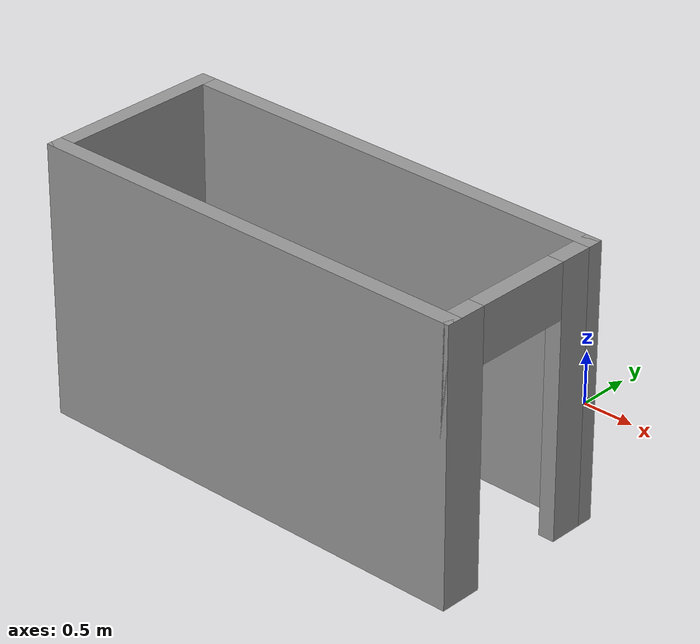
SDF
<?xml version='1.0'?>
<sdf version='1.6'>
  <model name='mybuild'>
    <pose frame=''>-0.98 -2.2 0 0 -0 0</pose>
    <link name='Wall_0'>
      <collision name='Wall_0_Collision'>
        <geometry>
          <box>
            <size>1.75 0.15 2.5</size>
          </box>
        </geometry>
        <pose frame=''>0 0 1.25 0 -0 0</pose>
      </collision>
      <visual name='Wall_0_Visual'>
        <pose frame=''>0 0 1.25 0 -0 0</pose>
        <geometry>
          <box>
            <size>1.75 0.15 2.5</size>
          </box>
        </geometry>
        <material>
          <script>
            <uri>file://media/materials/scripts/gazebo.material</uri>
            <name>Gazebo/Grey</name>
          </script>
          <ambient>1 1 1 1</ambient>
        </material>
        <meta>
          <layer>0</layer>
        </meta>
      </visual>
      <pose frame=''>-2.05 0 0 0 0 -1.5708</pose>
    </link>
    <link name='Wall_1'>
      <collision name='Wall_1_Collision'>
        <geometry>
          <box>
            <size>4.25 0.15 2.5</size>
          </box>
        </geometry>
        <pose frame=''>0 0 1.25 0 -0 0</pose>
      </collision>
      <visual name='Wall_1_Visual'>
        <pose frame=''>0 0 1.25 0 -0 0</pose>
        <geometry>
          <box>
            <size>4.25 0.15 2.5</size>
          </box>
        </geometry>
        <material>
          <script>
            <uri>file://media/materials/scripts/gazebo.material</uri>
            <name>Gazebo/Grey</name>
          </script>
          <ambient>1 1 1 1</ambient>
        </material>
        <meta>
          <layer>0</layer>
        </meta>
      </visual>
      <pose frame=''>0 -0.8 0 0 -0 0</pose>
    </link>
    <link name='Wall_2'>
      <pose frame=''>2.05 0 0 0 -0 1.5708</pose>
      <visual name='Wall_2_Visual_0'>
        <pose frame=''>-0.6775 0 1.25 0 -0 0</pose>
        <geometry>
          <box>
            <size>0.395 0.15 2.5</size>
          </box>
        </geometry>
        <material>
          <script>
            <uri>file://media/materials/scripts/gazebo.material</uri>
            <name>Gazebo/Grey</name>
          </script>
          <ambient>1 1 1 1</ambient>
        </material>
        <meta>
          <layer>0</layer>
        </meta>
      </visual>
      <collision name='Wall_2_Collision_0'>
        <geometry>
          <box>
            <size>0.395 0.15 2.5</size>
          </box>
        </geometry>
        <pose frame=''>-0.6775 0 1.25 0 -0 0</pose>
      </collision>
      <visual name='Wall_2_Visual_1'>
        <pose frame=''>0.6475 0 1.25 0 -0 0</pose>
        <geometry>
          <box>
            <size>0.455 0.15 2.5</size>
          </box>
        </geometry>
        <material>
          <script>
            <uri>file://media/materials/scripts/gazebo.material</uri>
            <name>Gazebo/Grey</name>
          </script>
          <ambient>1 1 1 1</ambient>
        </material>
        <meta>
          <layer>0</layer>
        </meta>
      </visual>
      <collision name='Wall_2_Collision_1'>
        <geometry>
          <box>
            <size>0.455 0.15 2.5</size>
          </box>
        </geometry>
        <pose frame=''>0.6475 0 1.25 0 -0 0</pose>
      </collision>
      <visual name='Wall_2_Visual_2'>
        <pose frame=''>-0.03 0 2.25 0 -0 0</pose>
        <geometry>
          <box>
            <size>0.9 0.15 0.5</size>
          </box>
        </geometry>
        <material>
          <script>
            <uri>file://media/materials/scripts/gazebo.material</uri>
            <name>Gazebo/Grey</name>
          </script>
          <ambient>1 1 1 1</ambient>
        </material>
        <meta>
          <layer>0</layer>
        </meta>
      </visual>
      <collision name='Wall_2_Collision_2'>
        <geometry>
          <box>
            <size>0.9 0.15 0.5</size>
          </box>
        </geometry>
        <pose frame=''>-0.03 0 2.25 0 -0 0</pose>
      </collision>
    </link>
    <link name='Wall_3'>
      <collision name='Wall_3_Collision'>
        <geometry>
          <box>
            <size>4.25 0.15 2.5</size>
          </box>
        </geometry>
        <pose frame=''>0 0 1.25 0 -0 0</pose>
      </collision>
      <visual name='Wall_3_Visual'>
        <pose frame=''>0 0 1.25 0 -0 0</pose>
        <geometry>
          <box>
            <size>4.25 0.15 2.5</size>
          </box>
        </geometry>
        <material>
          <script>
            <uri>file://media/materials/scripts/gazebo.material</uri>
            <name>Gazebo/Grey</name>
          </script>
          <ambient>1 1 1 1</ambient>
        </material>
        <meta>
          <layer>0</layer>
        </meta>
      </visual>
      <pose frame=''>0 0.8 0 0 -0 3.14159</pose>
    </link>
    <static>1</static>
  </model>
</sdf>
